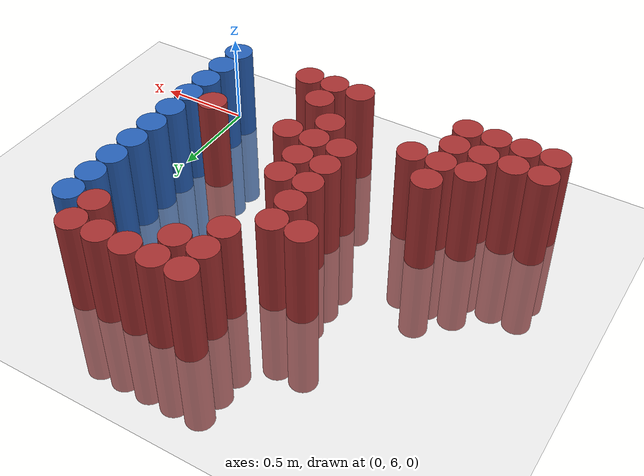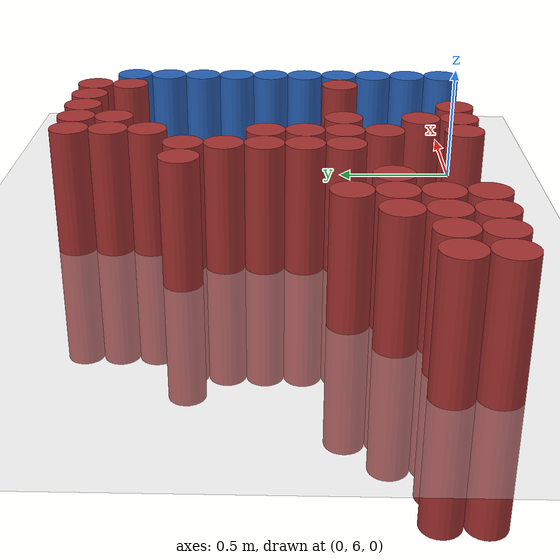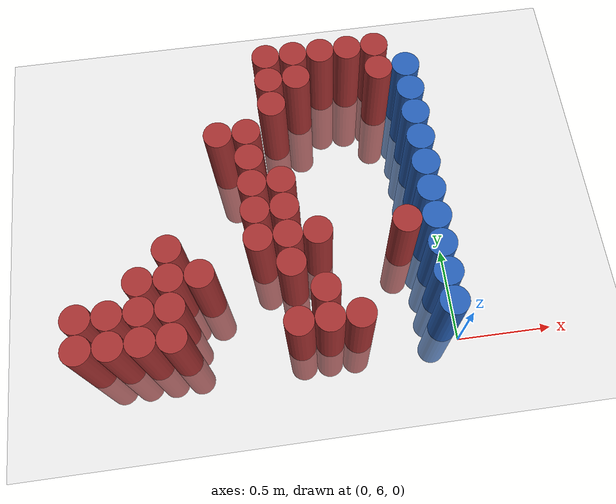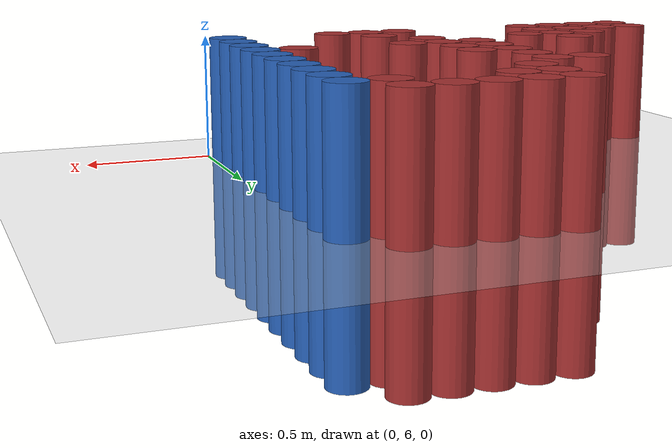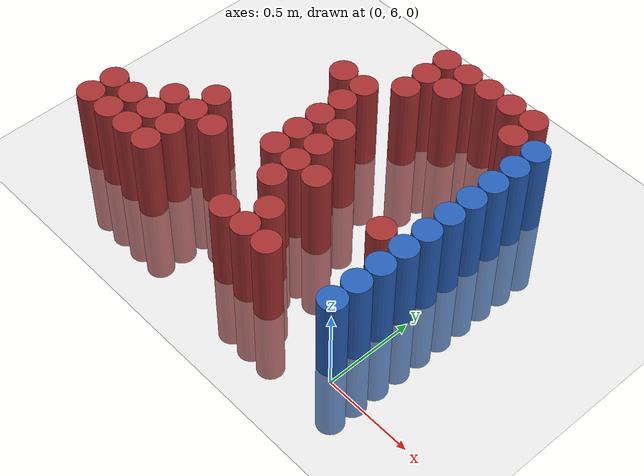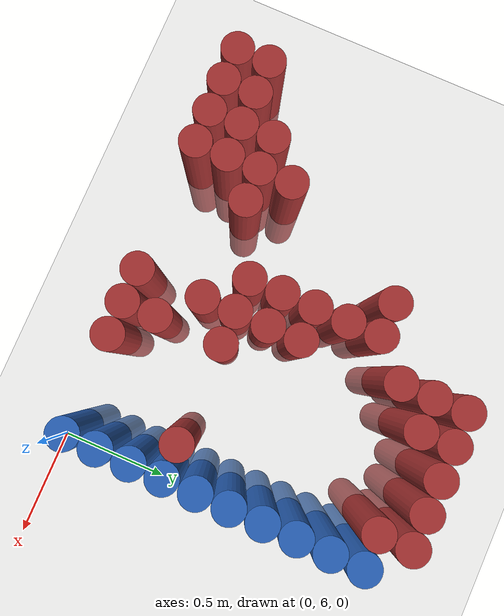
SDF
<sdf version="1.6">
 <world name="default">
  <model name="ground_plane">
   <static>1</static>
   <link name="link">
    <collision name="collision">
     <geometry><plane><normal>0 0 1</normal><size>100 100</size></plane></geometry>
     <surface><friction><ode><mu>100</mu><mu2>50</mu2></ode></friction></surface>
    </collision>
    <visual name="visual">
     <cast_shadows>0</cast_shadows>
     <geometry><plane><normal>0 0 1</normal><size>100 100</size></plane></geometry>
     <material>
      <script><uri>file://media/materials/scripts/gazebo.material</uri><name>Gazebo/Grey</name></script>
     </material>
    </visual>
   </link>
  </model>
  <model name="unit_cylinder_184">
   <static>1</static>
   <pose>-1.875000 6.075000 0.000000 0.000000 0.000000 0.000000</pose>
   <link name="link">
    <inertial>
     <mass>1</mass>
     <inertia><ixx>0.145833</ixx><ixy>0</ixy><ixz>0</ixz><iyy>0.145833</iyy><iyz>0</iyz><izz>0.125</izz></inertia>
    </inertial>
    <collision name="collision">
     <geometry><cylinder><radius>0.075000</radius><length>1</length></cylinder></geometry>
    </collision>
    <visual name="visual">
     <geometry><cylinder><radius>0.075000</radius><length>1</length></cylinder></geometry>
     <material>
      <ambient>0.648000 0.192000 0.192000 1</ambient>
      <diffuse>0.648000 0.192000 0.192000 1</diffuse>
     </material>
     <material>
      <script><name>Gazebo/Grey</name><uri>file://media/materials/scripts/gazebo.material</uri></script>
     </material>
    </visual>
   </link>
  </model>
  <model name="unit_cylinder_185">
   <static>1</static>
   <pose>-1.875000 6.225000 0.000000 0.000000 0.000000 0.000000</pose>
   <link name="link">
    <inertial>
     <mass>1</mass>
     <inertia><ixx>0.145833</ixx><ixy>0</ixy><ixz>0</ixz><iyy>0.145833</iyy><iyz>0</iyz><izz>0.125</izz></inertia>
    </inertial>
    <collision name="collision">
     <geometry><cylinder><radius>0.075000</radius><length>1</length></cylinder></geometry>
    </collision>
    <visual name="visual">
     <geometry><cylinder><radius>0.075000</radius><length>1</length></cylinder></geometry>
     <material>
      <ambient>0.648000 0.192000 0.192000 1</ambient>
      <diffuse>0.648000 0.192000 0.192000 1</diffuse>
     </material>
     <material>
      <script><name>Gazebo/Grey</name><uri>file://media/materials/scripts/gazebo.material</uri></script>
     </material>
    </visual>
   </link>
  </model>
  <model name="unit_cylinder_187">
   <static>1</static>
   <pose>-1.725000 6.075000 0.000000 0.000000 0.000000 0.000000</pose>
   <link name="link">
    <inertial>
     <mass>1</mass>
     <inertia><ixx>0.145833</ixx><ixy>0</ixy><ixz>0</ixz><iyy>0.145833</iyy><iyz>0</iyz><izz>0.125</izz></inertia>
    </inertial>
    <collision name="collision">
     <geometry><cylinder><radius>0.075000</radius><length>1</length></cylinder></geometry>
    </collision>
    <visual name="visual">
     <geometry><cylinder><radius>0.075000</radius><length>1</length></cylinder></geometry>
     <material>
      <ambient>0.648000 0.192000 0.192000 1</ambient>
      <diffuse>0.648000 0.192000 0.192000 1</diffuse>
     </material>
     <material>
      <script><name>Gazebo/Grey</name><uri>file://media/materials/scripts/gazebo.material</uri></script>
     </material>
    </visual>
   </link>
  </model>
  <model name="unit_cylinder_188">
   <static>1</static>
   <pose>-1.725000 6.225000 0.000000 0.000000 0.000000 0.000000</pose>
   <link name="link">
    <inertial>
     <mass>1</mass>
     <inertia><ixx>0.145833</ixx><ixy>0</ixy><ixz>0</ixz><iyy>0.145833</iyy><iyz>0</iyz><izz>0.125</izz></inertia>
    </inertial>
    <collision name="collision">
     <geometry><cylinder><radius>0.075000</radius><length>1</length></cylinder></geometry>
    </collision>
    <visual name="visual">
     <geometry><cylinder><radius>0.075000</radius><length>1</length></cylinder></geometry>
     <material>
      <ambient>0.648000 0.192000 0.192000 1</ambient>
      <diffuse>0.648000 0.192000 0.192000 1</diffuse>
     </material>
     <material>
      <script><name>Gazebo/Grey</name><uri>file://media/materials/scripts/gazebo.material</uri></script>
     </material>
    </visual>
   </link>
  </model>
  <model name="unit_cylinder_192">
   <static>1</static>
   <pose>-1.575000 6.075000 0.000000 0.000000 0.000000 0.000000</pose>
   <link name="link">
    <inertial>
     <mass>1</mass>
     <inertia><ixx>0.145833</ixx><ixy>0</ixy><ixz>0</ixz><iyy>0.145833</iyy><iyz>0</iyz><izz>0.125</izz></inertia>
    </inertial>
    <collision name="collision">
     <geometry><cylinder><radius>0.075000</radius><length>1</length></cylinder></geometry>
    </collision>
    <visual name="visual">
     <geometry><cylinder><radius>0.075000</radius><length>1</length></cylinder></geometry>
     <material>
      <ambient>0.648000 0.192000 0.192000 1</ambient>
      <diffuse>0.648000 0.192000 0.192000 1</diffuse>
     </material>
     <material>
      <script><name>Gazebo/Grey</name><uri>file://media/materials/scripts/gazebo.material</uri></script>
     </material>
    </visual>
   </link>
  </model>
  <model name="unit_cylinder_193">
   <static>1</static>
   <pose>-1.575000 6.225000 0.000000 0.000000 0.000000 0.000000</pose>
   <link name="link">
    <inertial>
     <mass>1</mass>
     <inertia><ixx>0.145833</ixx><ixy>0</ixy><ixz>0</ixz><iyy>0.145833</iyy><iyz>0</iyz><izz>0.125</izz></inertia>
    </inertial>
    <collision name="collision">
     <geometry><cylinder><radius>0.075000</radius><length>1</length></cylinder></geometry>
    </collision>
    <visual name="visual">
     <geometry><cylinder><radius>0.075000</radius><length>1</length></cylinder></geometry>
     <material>
      <ambient>0.648000 0.192000 0.192000 1</ambient>
      <diffuse>0.648000 0.192000 0.192000 1</diffuse>
     </material>
     <material>
      <script><name>Gazebo/Grey</name><uri>file://media/materials/scripts/gazebo.material</uri></script>
     </material>
    </visual>
   </link>
  </model>
  <model name="unit_cylinder_194">
   <static>1</static>
   <pose>-1.575000 6.375000 0.000000 0.000000 0.000000 0.000000</pose>
   <link name="link">
    <inertial>
     <mass>1</mass>
     <inertia><ixx>0.145833</ixx><ixy>0</ixy><ixz>0</ixz><iyy>0.145833</iyy><iyz>0</iyz><izz>0.125</izz></inertia>
    </inertial>
    <collision name="collision">
     <geometry><cylinder><radius>0.075000</radius><length>1</length></cylinder></geometry>
    </collision>
    <visual name="visual">
     <geometry><cylinder><radius>0.075000</radius><length>1</length></cylinder></geometry>
     <material>
      <ambient>0.648000 0.192000 0.192000 1</ambient>
      <diffuse>0.648000 0.192000 0.192000 1</diffuse>
     </material>
     <material>
      <script><name>Gazebo/Grey</name><uri>file://media/materials/scripts/gazebo.material</uri></script>
     </material>
    </visual>
   </link>
  </model>
  <model name="unit_cylinder_197">
   <static>1</static>
   <pose>-1.425000 6.075000 0.000000 0.000000 0.000000 0.000000</pose>
   <link name="link">
    <inertial>
     <mass>1</mass>
     <inertia><ixx>0.145833</ixx><ixy>0</ixy><ixz>0</ixz><iyy>0.145833</iyy><iyz>0</iyz><izz>0.125</izz></inertia>
    </inertial>
    <collision name="collision">
     <geometry><cylinder><radius>0.075000</radius><length>1</length></cylinder></geometry>
    </collision>
    <visual name="visual">
     <geometry><cylinder><radius>0.075000</radius><length>1</length></cylinder></geometry>
     <material>
      <ambient>0.648000 0.192000 0.192000 1</ambient>
      <diffuse>0.648000 0.192000 0.192000 1</diffuse>
     </material>
     <material>
      <script><name>Gazebo/Grey</name><uri>file://media/materials/scripts/gazebo.material</uri></script>
     </material>
    </visual>
   </link>
  </model>
  <model name="unit_cylinder_198">
   <static>1</static>
   <pose>-1.425000 6.225000 0.000000 0.000000 0.000000 0.000000</pose>
   <link name="link">
    <inertial>
     <mass>1</mass>
     <inertia><ixx>0.145833</ixx><ixy>0</ixy><ixz>0</ixz><iyy>0.145833</iyy><iyz>0</iyz><izz>0.125</izz></inertia>
    </inertial>
    <collision name="collision">
     <geometry><cylinder><radius>0.075000</radius><length>1</length></cylinder></geometry>
    </collision>
    <visual name="visual">
     <geometry><cylinder><radius>0.075000</radius><length>1</length></cylinder></geometry>
     <material>
      <ambient>0.648000 0.192000 0.192000 1</ambient>
      <diffuse>0.648000 0.192000 0.192000 1</diffuse>
     </material>
     <material>
      <script><name>Gazebo/Grey</name><uri>file://media/materials/scripts/gazebo.material</uri></script>
     </material>
    </visual>
   </link>
  </model>
  <model name="unit_cylinder_199">
   <static>1</static>
   <pose>-1.425000 6.375000 0.000000 0.000000 0.000000 0.000000</pose>
   <link name="link">
    <inertial>
     <mass>1</mass>
     <inertia><ixx>0.145833</ixx><ixy>0</ixy><ixz>0</ixz><iyy>0.145833</iyy><iyz>0</iyz><izz>0.125</izz></inertia>
    </inertial>
    <collision name="collision">
     <geometry><cylinder><radius>0.075000</radius><length>1</length></cylinder></geometry>
    </collision>
    <visual name="visual">
     <geometry><cylinder><radius>0.075000</radius><length>1</length></cylinder></geometry>
     <material>
      <ambient>0.648000 0.192000 0.192000 1</ambient>
      <diffuse>0.648000 0.192000 0.192000 1</diffuse>
     </material>
     <material>
      <script><name>Gazebo/Grey</name><uri>file://media/materials/scripts/gazebo.material</uri></script>
     </material>
    </visual>
   </link>
  </model>
  <model name="unit_cylinder_200">
   <static>1</static>
   <pose>-1.425000 6.525000 0.000000 0.000000 0.000000 0.000000</pose>
   <link name="link">
    <inertial>
     <mass>1</mass>
     <inertia><ixx>0.145833</ixx><ixy>0</ixy><ixz>0</ixz><iyy>0.145833</iyy><iyz>0</iyz><izz>0.125</izz></inertia>
    </inertial>
    <collision name="collision">
     <geometry><cylinder><radius>0.075000</radius><length>1</length></cylinder></geometry>
    </collision>
    <visual name="visual">
     <geometry><cylinder><radius>0.075000</radius><length>1</length></cylinder></geometry>
     <material>
      <ambient>0.648000 0.192000 0.192000 1</ambient>
      <diffuse>0.648000 0.192000 0.192000 1</diffuse>
     </material>
     <material>
      <script><name>Gazebo/Grey</name><uri>file://media/materials/scripts/gazebo.material</uri></script>
     </material>
    </visual>
   </link>
  </model>
  <model name="unit_cylinder_201">
   <static>1</static>
   <pose>-1.275000 6.375000 0.000000 0.000000 0.000000 0.000000</pose>
   <link name="link">
    <inertial>
     <mass>1</mass>
     <inertia><ixx>0.145833</ixx><ixy>0</ixy><ixz>0</ixz><iyy>0.145833</iyy><iyz>0</iyz><izz>0.125</izz></inertia>
    </inertial>
    <collision name="collision">
     <geometry><cylinder><radius>0.075000</radius><length>1</length></cylinder></geometry>
    </collision>
    <visual name="visual">
     <geometry><cylinder><radius>0.075000</radius><length>1</length></cylinder></geometry>
     <material>
      <ambient>0.648000 0.192000 0.192000 1</ambient>
      <diffuse>0.648000 0.192000 0.192000 1</diffuse>
     </material>
     <material>
      <script><name>Gazebo/Grey</name><uri>file://media/materials/scripts/gazebo.material</uri></script>
     </material>
    </visual>
   </link>
  </model>
  <model name="unit_cylinder_202">
   <static>1</static>
   <pose>-1.125000 7.125000 0.000000 0.000000 0.000000 0.000000</pose>
   <link name="link">
    <inertial>
     <mass>1</mass>
     <inertia><ixx>0.145833</ixx><ixy>0</ixy><ixz>0</ixz><iyy>0.145833</iyy><iyz>0</iyz><izz>0.125</izz></inertia>
    </inertial>
    <collision name="collision">
     <geometry><cylinder><radius>0.075000</radius><length>1</length></cylinder></geometry>
    </collision>
    <visual name="visual">
     <geometry><cylinder><radius>0.075000</radius><length>1</length></cylinder></geometry>
     <material>
      <ambient>0.648000 0.192000 0.192000 1</ambient>
      <diffuse>0.648000 0.192000 0.192000 1</diffuse>
     </material>
     <material>
      <script><name>Gazebo/Grey</name><uri>file://media/materials/scripts/gazebo.material</uri></script>
     </material>
    </visual>
   </link>
  </model>
  <model name="unit_cylinder_205">
   <static>1</static>
   <pose>-0.975000 6.525000 0.000000 0.000000 0.000000 0.000000</pose>
   <link name="link">
    <inertial>
     <mass>1</mass>
     <inertia><ixx>0.145833</ixx><ixy>0</ixy><ixz>0</ixz><iyy>0.145833</iyy><iyz>0</iyz><izz>0.125</izz></inertia>
    </inertial>
    <collision name="collision">
     <geometry><cylinder><radius>0.075000</radius><length>1</length></cylinder></geometry>
    </collision>
    <visual name="visual">
     <geometry><cylinder><radius>0.075000</radius><length>1</length></cylinder></geometry>
     <material>
      <ambient>0.648000 0.192000 0.192000 1</ambient>
      <diffuse>0.648000 0.192000 0.192000 1</diffuse>
     </material>
     <material>
      <script><name>Gazebo/Grey</name><uri>file://media/materials/scripts/gazebo.material</uri></script>
     </material>
    </visual>
   </link>
  </model>
  <model name="unit_cylinder_206">
   <static>1</static>
   <pose>-0.975000 6.675000 0.000000 0.000000 0.000000 0.000000</pose>
   <link name="link">
    <inertial>
     <mass>1</mass>
     <inertia><ixx>0.145833</ixx><ixy>0</ixy><ixz>0</ixz><iyy>0.145833</iyy><iyz>0</iyz><izz>0.125</izz></inertia>
    </inertial>
    <collision name="collision">
     <geometry><cylinder><radius>0.075000</radius><length>1</length></cylinder></geometry>
    </collision>
    <visual name="visual">
     <geometry><cylinder><radius>0.075000</radius><length>1</length></cylinder></geometry>
     <material>
      <ambient>0.648000 0.192000 0.192000 1</ambient>
      <diffuse>0.648000 0.192000 0.192000 1</diffuse>
     </material>
     <material>
      <script><name>Gazebo/Grey</name><uri>file://media/materials/scripts/gazebo.material</uri></script>
     </material>
    </visual>
   </link>
  </model>
  <model name="unit_cylinder_207">
   <static>1</static>
   <pose>-0.975000 6.825000 0.000000 0.000000 0.000000 0.000000</pose>
   <link name="link">
    <inertial>
     <mass>1</mass>
     <inertia><ixx>0.145833</ixx><ixy>0</ixy><ixz>0</ixz><iyy>0.145833</iyy><iyz>0</iyz><izz>0.125</izz></inertia>
    </inertial>
    <collision name="collision">
     <geometry><cylinder><radius>0.075000</radius><length>1</length></cylinder></geometry>
    </collision>
    <visual name="visual">
     <geometry><cylinder><radius>0.075000</radius><length>1</length></cylinder></geometry>
     <material>
      <ambient>0.648000 0.192000 0.192000 1</ambient>
      <diffuse>0.648000 0.192000 0.192000 1</diffuse>
     </material>
     <material>
      <script><name>Gazebo/Grey</name><uri>file://media/materials/scripts/gazebo.material</uri></script>
     </material>
    </visual>
   </link>
  </model>
  <model name="unit_cylinder_208">
   <static>1</static>
   <pose>-0.975000 6.975000 0.000000 0.000000 0.000000 0.000000</pose>
   <link name="link">
    <inertial>
     <mass>1</mass>
     <inertia><ixx>0.145833</ixx><ixy>0</ixy><ixz>0</ixz><iyy>0.145833</iyy><iyz>0</iyz><izz>0.125</izz></inertia>
    </inertial>
    <collision name="collision">
     <geometry><cylinder><radius>0.075000</radius><length>1</length></cylinder></geometry>
    </collision>
    <visual name="visual">
     <geometry><cylinder><radius>0.075000</radius><length>1</length></cylinder></geometry>
     <material>
      <ambient>0.648000 0.192000 0.192000 1</ambient>
      <diffuse>0.648000 0.192000 0.192000 1</diffuse>
     </material>
     <material>
      <script><name>Gazebo/Grey</name><uri>file://media/materials/scripts/gazebo.material</uri></script>
     </material>
    </visual>
   </link>
  </model>
  <model name="unit_cylinder_209">
   <static>1</static>
   <pose>-0.975000 7.125000 0.000000 0.000000 0.000000 0.000000</pose>
   <link name="link">
    <inertial>
     <mass>1</mass>
     <inertia><ixx>0.145833</ixx><ixy>0</ixy><ixz>0</ixz><iyy>0.145833</iyy><iyz>0</iyz><izz>0.125</izz></inertia>
    </inertial>
    <collision name="collision">
     <geometry><cylinder><radius>0.075000</radius><length>1</length></cylinder></geometry>
    </collision>
    <visual name="visual">
     <geometry><cylinder><radius>0.075000</radius><length>1</length></cylinder></geometry>
     <material>
      <ambient>0.648000 0.192000 0.192000 1</ambient>
      <diffuse>0.648000 0.192000 0.192000 1</diffuse>
     </material>
     <material>
      <script><name>Gazebo/Grey</name><uri>file://media/materials/scripts/gazebo.material</uri></script>
     </material>
    </visual>
   </link>
  </model>
  <model name="unit_cylinder_212">
   <static>1</static>
   <pose>-0.825000 6.075000 0.000000 0.000000 0.000000 0.000000</pose>
   <link name="link">
    <inertial>
     <mass>1</mass>
     <inertia><ixx>0.145833</ixx><ixy>0</ixy><ixz>0</ixz><iyy>0.145833</iyy><iyz>0</iyz><izz>0.125</izz></inertia>
    </inertial>
    <collision name="collision">
     <geometry><cylinder><radius>0.075000</radius><length>1</length></cylinder></geometry>
    </collision>
    <visual name="visual">
     <geometry><cylinder><radius>0.075000</radius><length>1</length></cylinder></geometry>
     <material>
      <ambient>0.648000 0.192000 0.192000 1</ambient>
      <diffuse>0.648000 0.192000 0.192000 1</diffuse>
     </material>
     <material>
      <script><name>Gazebo/Grey</name><uri>file://media/materials/scripts/gazebo.material</uri></script>
     </material>
    </visual>
   </link>
  </model>
  <model name="unit_cylinder_213">
   <static>1</static>
   <pose>-0.825000 6.375000 0.000000 0.000000 0.000000 0.000000</pose>
   <link name="link">
    <inertial>
     <mass>1</mass>
     <inertia><ixx>0.145833</ixx><ixy>0</ixy><ixz>0</ixz><iyy>0.145833</iyy><iyz>0</iyz><izz>0.125</izz></inertia>
    </inertial>
    <collision name="collision">
     <geometry><cylinder><radius>0.075000</radius><length>1</length></cylinder></geometry>
    </collision>
    <visual name="visual">
     <geometry><cylinder><radius>0.075000</radius><length>1</length></cylinder></geometry>
     <material>
      <ambient>0.648000 0.192000 0.192000 1</ambient>
      <diffuse>0.648000 0.192000 0.192000 1</diffuse>
     </material>
     <material>
      <script><name>Gazebo/Grey</name><uri>file://media/materials/scripts/gazebo.material</uri></script>
     </material>
    </visual>
   </link>
  </model>
  <model name="unit_cylinder_214">
   <static>1</static>
   <pose>-0.825000 6.525000 0.000000 0.000000 0.000000 0.000000</pose>
   <link name="link">
    <inertial>
     <mass>1</mass>
     <inertia><ixx>0.145833</ixx><ixy>0</ixy><ixz>0</ixz><iyy>0.145833</iyy><iyz>0</iyz><izz>0.125</izz></inertia>
    </inertial>
    <collision name="collision">
     <geometry><cylinder><radius>0.075000</radius><length>1</length></cylinder></geometry>
    </collision>
    <visual name="visual">
     <geometry><cylinder><radius>0.075000</radius><length>1</length></cylinder></geometry>
     <material>
      <ambient>0.648000 0.192000 0.192000 1</ambient>
      <diffuse>0.648000 0.192000 0.192000 1</diffuse>
     </material>
     <material>
      <script><name>Gazebo/Grey</name><uri>file://media/materials/scripts/gazebo.material</uri></script>
     </material>
    </visual>
   </link>
  </model>
  <model name="unit_cylinder_215">
   <static>1</static>
   <pose>-0.825000 6.675000 0.000000 0.000000 0.000000 0.000000</pose>
   <link name="link">
    <inertial>
     <mass>1</mass>
     <inertia><ixx>0.145833</ixx><ixy>0</ixy><ixz>0</ixz><iyy>0.145833</iyy><iyz>0</iyz><izz>0.125</izz></inertia>
    </inertial>
    <collision name="collision">
     <geometry><cylinder><radius>0.075000</radius><length>1</length></cylinder></geometry>
    </collision>
    <visual name="visual">
     <geometry><cylinder><radius>0.075000</radius><length>1</length></cylinder></geometry>
     <material>
      <ambient>0.648000 0.192000 0.192000 1</ambient>
      <diffuse>0.648000 0.192000 0.192000 1</diffuse>
     </material>
     <material>
      <script><name>Gazebo/Grey</name><uri>file://media/materials/scripts/gazebo.material</uri></script>
     </material>
    </visual>
   </link>
  </model>
  <model name="unit_cylinder_216">
   <static>1</static>
   <pose>-0.825000 6.825000 0.000000 0.000000 0.000000 0.000000</pose>
   <link name="link">
    <inertial>
     <mass>1</mass>
     <inertia><ixx>0.145833</ixx><ixy>0</ixy><ixz>0</ixz><iyy>0.145833</iyy><iyz>0</iyz><izz>0.125</izz></inertia>
    </inertial>
    <collision name="collision">
     <geometry><cylinder><radius>0.075000</radius><length>1</length></cylinder></geometry>
    </collision>
    <visual name="visual">
     <geometry><cylinder><radius>0.075000</radius><length>1</length></cylinder></geometry>
     <material>
      <ambient>0.648000 0.192000 0.192000 1</ambient>
      <diffuse>0.648000 0.192000 0.192000 1</diffuse>
     </material>
     <material>
      <script><name>Gazebo/Grey</name><uri>file://media/materials/scripts/gazebo.material</uri></script>
     </material>
    </visual>
   </link>
  </model>
  <model name="unit_cylinder_217">
   <static>1</static>
   <pose>-0.825000 7.275000 0.000000 0.000000 0.000000 0.000000</pose>
   <link name="link">
    <inertial>
     <mass>1</mass>
     <inertia><ixx>0.145833</ixx><ixy>0</ixy><ixz>0</ixz><iyy>0.145833</iyy><iyz>0</iyz><izz>0.125</izz></inertia>
    </inertial>
    <collision name="collision">
     <geometry><cylinder><radius>0.075000</radius><length>1</length></cylinder></geometry>
    </collision>
    <visual name="visual">
     <geometry><cylinder><radius>0.075000</radius><length>1</length></cylinder></geometry>
     <material>
      <ambient>0.648000 0.192000 0.192000 1</ambient>
      <diffuse>0.648000 0.192000 0.192000 1</diffuse>
     </material>
     <material>
      <script><name>Gazebo/Grey</name><uri>file://media/materials/scripts/gazebo.material</uri></script>
     </material>
    </visual>
   </link>
  </model>
  <model name="unit_cylinder_218">
   <static>1</static>
   <pose>-0.825000 7.425000 0.000000 0.000000 0.000000 0.000000</pose>
   <link name="link">
    <inertial>
     <mass>1</mass>
     <inertia><ixx>0.145833</ixx><ixy>0</ixy><ixz>0</ixz><iyy>0.145833</iyy><iyz>0</iyz><izz>0.125</izz></inertia>
    </inertial>
    <collision name="collision">
     <geometry><cylinder><radius>0.075000</radius><length>1</length></cylinder></geometry>
    </collision>
    <visual name="visual">
     <geometry><cylinder><radius>0.075000</radius><length>1</length></cylinder></geometry>
     <material>
      <ambient>0.648000 0.192000 0.192000 1</ambient>
      <diffuse>0.648000 0.192000 0.192000 1</diffuse>
     </material>
     <material>
      <script><name>Gazebo/Grey</name><uri>file://media/materials/scripts/gazebo.material</uri></script>
     </material>
    </visual>
   </link>
  </model>
  <model name="unit_cylinder_219">
   <static>1</static>
   <pose>-0.825000 7.575000 0.000000 0.000000 0.000000 0.000000</pose>
   <link name="link">
    <inertial>
     <mass>1</mass>
     <inertia><ixx>0.145833</ixx><ixy>0</ixy><ixz>0</ixz><iyy>0.145833</iyy><iyz>0</iyz><izz>0.125</izz></inertia>
    </inertial>
    <collision name="collision">
     <geometry><cylinder><radius>0.075000</radius><length>1</length></cylinder></geometry>
    </collision>
    <visual name="visual">
     <geometry><cylinder><radius>0.075000</radius><length>1</length></cylinder></geometry>
     <material>
      <ambient>0.648000 0.192000 0.192000 1</ambient>
      <diffuse>0.648000 0.192000 0.192000 1</diffuse>
     </material>
     <material>
      <script><name>Gazebo/Grey</name><uri>file://media/materials/scripts/gazebo.material</uri></script>
     </material>
    </visual>
   </link>
  </model>
  <model name="unit_cylinder_225">
   <static>1</static>
   <pose>-0.675000 6.075000 0.000000 0.000000 0.000000 0.000000</pose>
   <link name="link">
    <inertial>
     <mass>1</mass>
     <inertia><ixx>0.145833</ixx><ixy>0</ixy><ixz>0</ixz><iyy>0.145833</iyy><iyz>0</iyz><izz>0.125</izz></inertia>
    </inertial>
    <collision name="collision">
     <geometry><cylinder><radius>0.075000</radius><length>1</length></cylinder></geometry>
    </collision>
    <visual name="visual">
     <geometry><cylinder><radius>0.075000</radius><length>1</length></cylinder></geometry>
     <material>
      <ambient>0.648000 0.192000 0.192000 1</ambient>
      <diffuse>0.648000 0.192000 0.192000 1</diffuse>
     </material>
     <material>
      <script><name>Gazebo/Grey</name><uri>file://media/materials/scripts/gazebo.material</uri></script>
     </material>
    </visual>
   </link>
  </model>
  <model name="unit_cylinder_226">
   <static>1</static>
   <pose>-0.675000 6.225000 0.000000 0.000000 0.000000 0.000000</pose>
   <link name="link">
    <inertial>
     <mass>1</mass>
     <inertia><ixx>0.145833</ixx><ixy>0</ixy><ixz>0</ixz><iyy>0.145833</iyy><iyz>0</iyz><izz>0.125</izz></inertia>
    </inertial>
    <collision name="collision">
     <geometry><cylinder><radius>0.075000</radius><length>1</length></cylinder></geometry>
    </collision>
    <visual name="visual">
     <geometry><cylinder><radius>0.075000</radius><length>1</length></cylinder></geometry>
     <material>
      <ambient>0.648000 0.192000 0.192000 1</ambient>
      <diffuse>0.648000 0.192000 0.192000 1</diffuse>
     </material>
     <material>
      <script><name>Gazebo/Grey</name><uri>file://media/materials/scripts/gazebo.material</uri></script>
     </material>
    </visual>
   </link>
  </model>
  <model name="unit_cylinder_227">
   <static>1</static>
   <pose>-0.675000 6.525000 0.000000 0.000000 0.000000 0.000000</pose>
   <link name="link">
    <inertial>
     <mass>1</mass>
     <inertia><ixx>0.145833</ixx><ixy>0</ixy><ixz>0</ixz><iyy>0.145833</iyy><iyz>0</iyz><izz>0.125</izz></inertia>
    </inertial>
    <collision name="collision">
     <geometry><cylinder><radius>0.075000</radius><length>1</length></cylinder></geometry>
    </collision>
    <visual name="visual">
     <geometry><cylinder><radius>0.075000</radius><length>1</length></cylinder></geometry>
     <material>
      <ambient>0.648000 0.192000 0.192000 1</ambient>
      <diffuse>0.648000 0.192000 0.192000 1</diffuse>
     </material>
     <material>
      <script><name>Gazebo/Grey</name><uri>file://media/materials/scripts/gazebo.material</uri></script>
     </material>
    </visual>
   </link>
  </model>
  <model name="unit_cylinder_228">
   <static>1</static>
   <pose>-0.675000 7.425000 0.000000 0.000000 0.000000 0.000000</pose>
   <link name="link">
    <inertial>
     <mass>1</mass>
     <inertia><ixx>0.145833</ixx><ixy>0</ixy><ixz>0</ixz><iyy>0.145833</iyy><iyz>0</iyz><izz>0.125</izz></inertia>
    </inertial>
    <collision name="collision">
     <geometry><cylinder><radius>0.075000</radius><length>1</length></cylinder></geometry>
    </collision>
    <visual name="visual">
     <geometry><cylinder><radius>0.075000</radius><length>1</length></cylinder></geometry>
     <material>
      <ambient>0.648000 0.192000 0.192000 1</ambient>
      <diffuse>0.648000 0.192000 0.192000 1</diffuse>
     </material>
     <material>
      <script><name>Gazebo/Grey</name><uri>file://media/materials/scripts/gazebo.material</uri></script>
     </material>
    </visual>
   </link>
  </model>
  <model name="unit_cylinder_229">
   <static>1</static>
   <pose>-0.675000 7.575000 0.000000 0.000000 0.000000 0.000000</pose>
   <link name="link">
    <inertial>
     <mass>1</mass>
     <inertia><ixx>0.145833</ixx><ixy>0</ixy><ixz>0</ixz><iyy>0.145833</iyy><iyz>0</iyz><izz>0.125</izz></inertia>
    </inertial>
    <collision name="collision">
     <geometry><cylinder><radius>0.075000</radius><length>1</length></cylinder></geometry>
    </collision>
    <visual name="visual">
     <geometry><cylinder><radius>0.075000</radius><length>1</length></cylinder></geometry>
     <material>
      <ambient>0.648000 0.192000 0.192000 1</ambient>
      <diffuse>0.648000 0.192000 0.192000 1</diffuse>
     </material>
     <material>
      <script><name>Gazebo/Grey</name><uri>file://media/materials/scripts/gazebo.material</uri></script>
     </material>
    </visual>
   </link>
  </model>
  <model name="unit_cylinder_237">
   <static>1</static>
   <pose>-0.525000 6.075000 0.000000 0.000000 0.000000 0.000000</pose>
   <link name="link">
    <inertial>
     <mass>1</mass>
     <inertia><ixx>0.145833</ixx><ixy>0</ixy><ixz>0</ixz><iyy>0.145833</iyy><iyz>0</iyz><izz>0.125</izz></inertia>
    </inertial>
    <collision name="collision">
     <geometry><cylinder><radius>0.075000</radius><length>1</length></cylinder></geometry>
    </collision>
    <visual name="visual">
     <geometry><cylinder><radius>0.075000</radius><length>1</length></cylinder></geometry>
     <material>
      <ambient>0.648000 0.192000 0.192000 1</ambient>
      <diffuse>0.648000 0.192000 0.192000 1</diffuse>
     </material>
     <material>
      <script><name>Gazebo/Grey</name><uri>file://media/materials/scripts/gazebo.material</uri></script>
     </material>
    </visual>
   </link>
  </model>
  <model name="unit_cylinder_238">
   <static>1</static>
   <pose>-0.525000 7.575000 0.000000 0.000000 0.000000 0.000000</pose>
   <link name="link">
    <inertial>
     <mass>1</mass>
     <inertia><ixx>0.145833</ixx><ixy>0</ixy><ixz>0</ixz><iyy>0.145833</iyy><iyz>0</iyz><izz>0.125</izz></inertia>
    </inertial>
    <collision name="collision">
     <geometry><cylinder><radius>0.075000</radius><length>1</length></cylinder></geometry>
    </collision>
    <visual name="visual">
     <geometry><cylinder><radius>0.075000</radius><length>1</length></cylinder></geometry>
     <material>
      <ambient>0.648000 0.192000 0.192000 1</ambient>
      <diffuse>0.648000 0.192000 0.192000 1</diffuse>
     </material>
     <material>
      <script><name>Gazebo/Grey</name><uri>file://media/materials/scripts/gazebo.material</uri></script>
     </material>
    </visual>
   </link>
  </model>
  <model name="unit_cylinder_243">
   <static>1</static>
   <pose>-0.375000 7.575000 0.000000 0.000000 0.000000 0.000000</pose>
   <link name="link">
    <inertial>
     <mass>1</mass>
     <inertia><ixx>0.145833</ixx><ixy>0</ixy><ixz>0</ixz><iyy>0.145833</iyy><iyz>0</iyz><izz>0.125</izz></inertia>
    </inertial>
    <collision name="collision">
     <geometry><cylinder><radius>0.075000</radius><length>1</length></cylinder></geometry>
    </collision>
    <visual name="visual">
     <geometry><cylinder><radius>0.075000</radius><length>1</length></cylinder></geometry>
     <material>
      <ambient>0.648000 0.192000 0.192000 1</ambient>
      <diffuse>0.648000 0.192000 0.192000 1</diffuse>
     </material>
     <material>
      <script><name>Gazebo/Grey</name><uri>file://media/materials/scripts/gazebo.material</uri></script>
     </material>
    </visual>
   </link>
  </model>
  <model name="unit_cylinder_252">
   <static>1</static>
   <pose>-0.225000 6.525000 0.000000 0.000000 0.000000 0.000000</pose>
   <link name="link">
    <inertial>
     <mass>1</mass>
     <inertia><ixx>0.145833</ixx><ixy>0</ixy><ixz>0</ixz><iyy>0.145833</iyy><iyz>0</iyz><izz>0.125</izz></inertia>
    </inertial>
    <collision name="collision">
     <geometry><cylinder><radius>0.075000</radius><length>1</length></cylinder></geometry>
    </collision>
    <visual name="visual">
     <geometry><cylinder><radius>0.075000</radius><length>1</length></cylinder></geometry>
     <material>
      <ambient>0.648000 0.192000 0.192000 1</ambient>
      <diffuse>0.648000 0.192000 0.192000 1</diffuse>
     </material>
     <material>
      <script><name>Gazebo/Grey</name><uri>file://media/materials/scripts/gazebo.material</uri></script>
     </material>
    </visual>
   </link>
  </model>
  <model name="unit_cylinder_253">
   <static>1</static>
   <pose>-0.225000 7.425000 0.000000 0.000000 0.000000 0.000000</pose>
   <link name="link">
    <inertial>
     <mass>1</mass>
     <inertia><ixx>0.145833</ixx><ixy>0</ixy><ixz>0</ixz><iyy>0.145833</iyy><iyz>0</iyz><izz>0.125</izz></inertia>
    </inertial>
    <collision name="collision">
     <geometry><cylinder><radius>0.075000</radius><length>1</length></cylinder></geometry>
    </collision>
    <visual name="visual">
     <geometry><cylinder><radius>0.075000</radius><length>1</length></cylinder></geometry>
     <material>
      <ambient>0.648000 0.192000 0.192000 1</ambient>
      <diffuse>0.648000 0.192000 0.192000 1</diffuse>
     </material>
     <material>
      <script><name>Gazebo/Grey</name><uri>file://media/materials/scripts/gazebo.material</uri></script>
     </material>
    </visual>
   </link>
  </model>
  <model name="unit_cylinder_254">
   <static>1</static>
   <pose>-0.225000 7.575000 0.000000 0.000000 0.000000 0.000000</pose>
   <link name="link">
    <inertial>
     <mass>1</mass>
     <inertia><ixx>0.145833</ixx><ixy>0</ixy><ixz>0</ixz><iyy>0.145833</iyy><iyz>0</iyz><izz>0.125</izz></inertia>
    </inertial>
    <collision name="collision">
     <geometry><cylinder><radius>0.075000</radius><length>1</length></cylinder></geometry>
    </collision>
    <visual name="visual">
     <geometry><cylinder><radius>0.075000</radius><length>1</length></cylinder></geometry>
     <material>
      <ambient>0.648000 0.192000 0.192000 1</ambient>
      <diffuse>0.648000 0.192000 0.192000 1</diffuse>
     </material>
     <material>
      <script><name>Gazebo/Grey</name><uri>file://media/materials/scripts/gazebo.material</uri></script>
     </material>
    </visual>
   </link>
  </model>
  <model name="unit_cylinder_262">
   <static>1</static>
   <pose>-0.075000 6.075000 0.000000 0.000000 0.000000 0.000000</pose>
   <link name="link">
    <inertial>
     <mass>1</mass>
     <inertia><ixx>0.145833</ixx><ixy>0</ixy><ixz>0</ixz><iyy>0.145833</iyy><iyz>0</iyz><izz>0.125</izz></inertia>
    </inertial>
    <collision name="collision">
     <geometry><cylinder><radius>0.075000</radius><length>1</length></cylinder></geometry>
    </collision>
    <visual name="visual">
     <geometry><cylinder><radius>0.075000</radius><length>1</length></cylinder></geometry>
     <material>
      <ambient>0.152000 0.379000 0.720000 1</ambient>
      <diffuse>0.152000 0.379000 0.720000 1</diffuse>
     </material>
     <material>
      <script><name>Gazebo/Grey</name><uri>file://media/materials/scripts/gazebo.material</uri></script>
     </material>
    </visual>
   </link>
  </model>
  <model name="unit_cylinder_263">
   <static>1</static>
   <pose>-0.075000 6.225000 0.000000 0.000000 0.000000 0.000000</pose>
   <link name="link">
    <inertial>
     <mass>1</mass>
     <inertia><ixx>0.145833</ixx><ixy>0</ixy><ixz>0</ixz><iyy>0.145833</iyy><iyz>0</iyz><izz>0.125</izz></inertia>
    </inertial>
    <collision name="collision">
     <geometry><cylinder><radius>0.075000</radius><length>1</length></cylinder></geometry>
    </collision>
    <visual name="visual">
     <geometry><cylinder><radius>0.075000</radius><length>1</length></cylinder></geometry>
     <material>
      <ambient>0.152000 0.379000 0.720000 1</ambient>
      <diffuse>0.152000 0.379000 0.720000 1</diffuse>
     </material>
     <material>
      <script><name>Gazebo/Grey</name><uri>file://media/materials/scripts/gazebo.material</uri></script>
     </material>
    </visual>
   </link>
  </model>
  <model name="unit_cylinder_264">
   <static>1</static>
   <pose>-0.075000 6.375000 0.000000 0.000000 0.000000 0.000000</pose>
   <link name="link">
    <inertial>
     <mass>1</mass>
     <inertia><ixx>0.145833</ixx><ixy>0</ixy><ixz>0</ixz><iyy>0.145833</iyy><iyz>0</iyz><izz>0.125</izz></inertia>
    </inertial>
    <collision name="collision">
     <geometry><cylinder><radius>0.075000</radius><length>1</length></cylinder></geometry>
    </collision>
    <visual name="visual">
     <geometry><cylinder><radius>0.075000</radius><length>1</length></cylinder></geometry>
     <material>
      <ambient>0.152000 0.379000 0.720000 1</ambient>
      <diffuse>0.152000 0.379000 0.720000 1</diffuse>
     </material>
     <material>
      <script><name>Gazebo/Grey</name><uri>file://media/materials/scripts/gazebo.material</uri></script>
     </material>
    </visual>
   </link>
  </model>
  <model name="unit_cylinder_265">
   <static>1</static>
   <pose>-0.075000 6.525000 0.000000 0.000000 0.000000 0.000000</pose>
   <link name="link">
    <inertial>
     <mass>1</mass>
     <inertia><ixx>0.145833</ixx><ixy>0</ixy><ixz>0</ixz><iyy>0.145833</iyy><iyz>0</iyz><izz>0.125</izz></inertia>
    </inertial>
    <collision name="collision">
     <geometry><cylinder><radius>0.075000</radius><length>1</length></cylinder></geometry>
    </collision>
    <visual name="visual">
     <geometry><cylinder><radius>0.075000</radius><length>1</length></cylinder></geometry>
     <material>
      <ambient>0.152000 0.379000 0.720000 1</ambient>
      <diffuse>0.152000 0.379000 0.720000 1</diffuse>
     </material>
     <material>
      <script><name>Gazebo/Grey</name><uri>file://media/materials/scripts/gazebo.material</uri></script>
     </material>
    </visual>
   </link>
  </model>
  <model name="unit_cylinder_266">
   <static>1</static>
   <pose>-0.075000 6.675000 0.000000 0.000000 0.000000 0.000000</pose>
   <link name="link">
    <inertial>
     <mass>1</mass>
     <inertia><ixx>0.145833</ixx><ixy>0</ixy><ixz>0</ixz><iyy>0.145833</iyy><iyz>0</iyz><izz>0.125</izz></inertia>
    </inertial>
    <collision name="collision">
     <geometry><cylinder><radius>0.075000</radius><length>1</length></cylinder></geometry>
    </collision>
    <visual name="visual">
     <geometry><cylinder><radius>0.075000</radius><length>1</length></cylinder></geometry>
     <material>
      <ambient>0.152000 0.379000 0.720000 1</ambient>
      <diffuse>0.152000 0.379000 0.720000 1</diffuse>
     </material>
     <material>
      <script><name>Gazebo/Grey</name><uri>file://media/materials/scripts/gazebo.material</uri></script>
     </material>
    </visual>
   </link>
  </model>
  <model name="unit_cylinder_267">
   <static>1</static>
   <pose>-0.075000 6.825000 0.000000 0.000000 0.000000 0.000000</pose>
   <link name="link">
    <inertial>
     <mass>1</mass>
     <inertia><ixx>0.145833</ixx><ixy>0</ixy><ixz>0</ixz><iyy>0.145833</iyy><iyz>0</iyz><izz>0.125</izz></inertia>
    </inertial>
    <collision name="collision">
     <geometry><cylinder><radius>0.075000</radius><length>1</length></cylinder></geometry>
    </collision>
    <visual name="visual">
     <geometry><cylinder><radius>0.075000</radius><length>1</length></cylinder></geometry>
     <material>
      <ambient>0.152000 0.379000 0.720000 1</ambient>
      <diffuse>0.152000 0.379000 0.720000 1</diffuse>
     </material>
     <material>
      <script><name>Gazebo/Grey</name><uri>file://media/materials/scripts/gazebo.material</uri></script>
     </material>
    </visual>
   </link>
  </model>
  <model name="unit_cylinder_268">
   <static>1</static>
   <pose>-0.075000 6.975000 0.000000 0.000000 0.000000 0.000000</pose>
   <link name="link">
    <inertial>
     <mass>1</mass>
     <inertia><ixx>0.145833</ixx><ixy>0</ixy><ixz>0</ixz><iyy>0.145833</iyy><iyz>0</iyz><izz>0.125</izz></inertia>
    </inertial>
    <collision name="collision">
     <geometry><cylinder><radius>0.075000</radius><length>1</length></cylinder></geometry>
    </collision>
    <visual name="visual">
     <geometry><cylinder><radius>0.075000</radius><length>1</length></cylinder></geometry>
     <material>
      <ambient>0.152000 0.379000 0.720000 1</ambient>
      <diffuse>0.152000 0.379000 0.720000 1</diffuse>
     </material>
     <material>
      <script><name>Gazebo/Grey</name><uri>file://media/materials/scripts/gazebo.material</uri></script>
     </material>
    </visual>
   </link>
  </model>
  <model name="unit_cylinder_269">
   <static>1</static>
   <pose>-0.075000 7.125000 0.000000 0.000000 0.000000 0.000000</pose>
   <link name="link">
    <inertial>
     <mass>1</mass>
     <inertia><ixx>0.145833</ixx><ixy>0</ixy><ixz>0</ixz><iyy>0.145833</iyy><iyz>0</iyz><izz>0.125</izz></inertia>
    </inertial>
    <collision name="collision">
     <geometry><cylinder><radius>0.075000</radius><length>1</length></cylinder></geometry>
    </collision>
    <visual name="visual">
     <geometry><cylinder><radius>0.075000</radius><length>1</length></cylinder></geometry>
     <material>
      <ambient>0.152000 0.379000 0.720000 1</ambient>
      <diffuse>0.152000 0.379000 0.720000 1</diffuse>
     </material>
     <material>
      <script><name>Gazebo/Grey</name><uri>file://media/materials/scripts/gazebo.material</uri></script>
     </material>
    </visual>
   </link>
  </model>
  <model name="unit_cylinder_270">
   <static>1</static>
   <pose>-0.075000 7.275000 0.000000 0.000000 0.000000 0.000000</pose>
   <link name="link">
    <inertial>
     <mass>1</mass>
     <inertia><ixx>0.145833</ixx><ixy>0</ixy><ixz>0</ixz><iyy>0.145833</iyy><iyz>0</iyz><izz>0.125</izz></inertia>
    </inertial>
    <collision name="collision">
     <geometry><cylinder><radius>0.075000</radius><length>1</length></cylinder></geometry>
    </collision>
    <visual name="visual">
     <geometry><cylinder><radius>0.075000</radius><length>1</length></cylinder></geometry>
     <material>
      <ambient>0.152000 0.379000 0.720000 1</ambient>
      <diffuse>0.152000 0.379000 0.720000 1</diffuse>
     </material>
     <material>
      <script><name>Gazebo/Grey</name><uri>file://media/materials/scripts/gazebo.material</uri></script>
     </material>
    </visual>
   </link>
  </model>
  <model name="unit_cylinder_271">
   <static>1</static>
   <pose>-0.075000 7.425000 0.000000 0.000000 0.000000 0.000000</pose>
   <link name="link">
    <inertial>
     <mass>1</mass>
     <inertia><ixx>0.145833</ixx><ixy>0</ixy><ixz>0</ixz><iyy>0.145833</iyy><iyz>0</iyz><izz>0.125</izz></inertia>
    </inertial>
    <collision name="collision">
     <geometry><cylinder><radius>0.075000</radius><length>1</length></cylinder></geometry>
    </collision>
    <visual name="visual">
     <geometry><cylinder><radius>0.075000</radius><length>1</length></cylinder></geometry>
     <material>
      <ambient>0.152000 0.379000 0.720000 1</ambient>
      <diffuse>0.152000 0.379000 0.720000 1</diffuse>
     </material>
     <material>
      <script><name>Gazebo/Grey</name><uri>file://media/materials/scripts/gazebo.material</uri></script>
     </material>
    </visual>
   </link>
  </model>
 </world>
</sdf>
